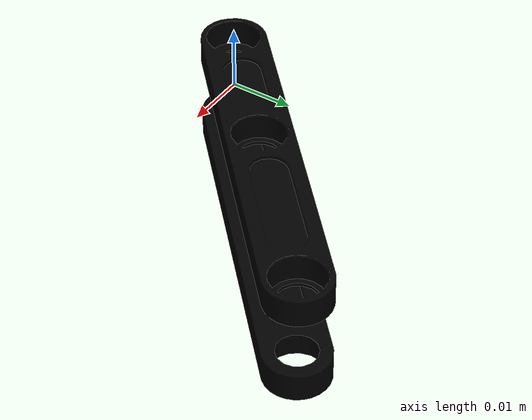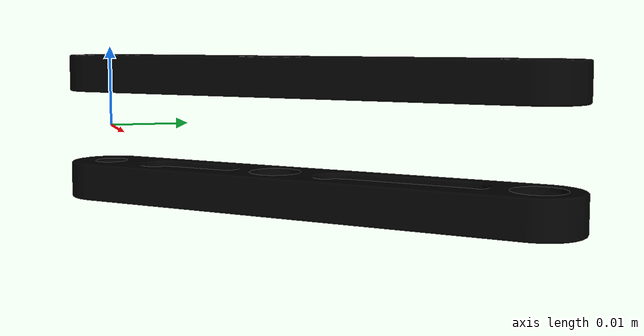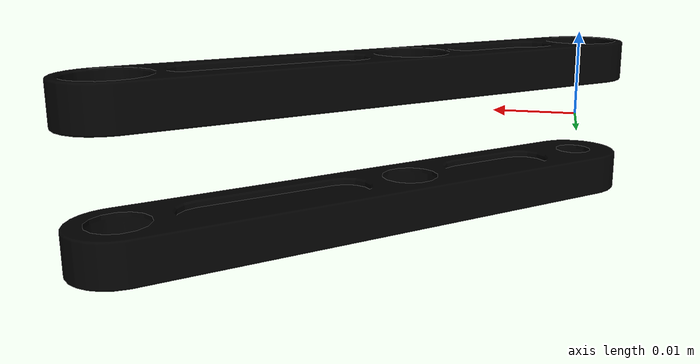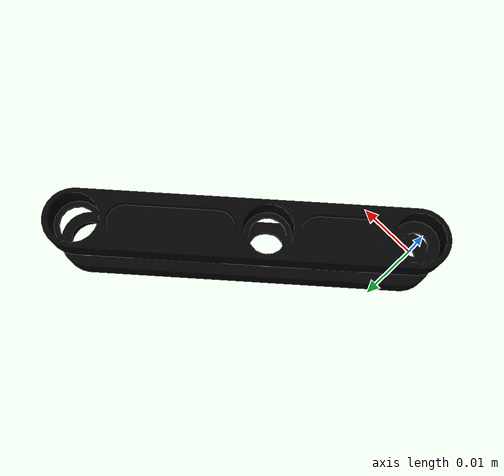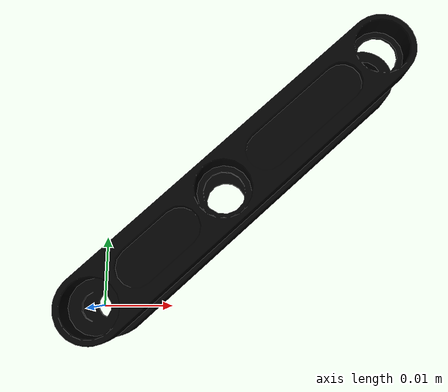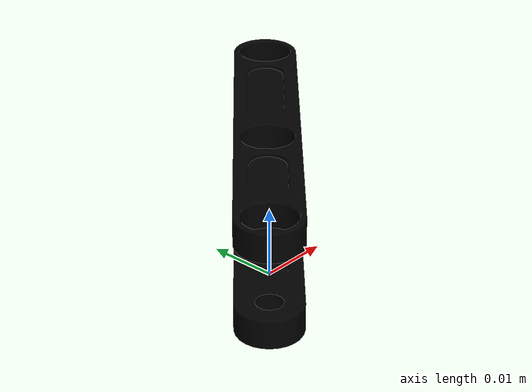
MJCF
<mujoco model="right_inner_link">
  <default>
    <default class="visual">
      <geom group="2" type="mesh" contype="0" conaffinity="0"/>
    </default>
    <default class="collision">
      <geom group="3" type="mesh"/>
    </default>
  </default>
  <asset>
    <material name="material_right_inner_link_0" specular="0.20000000000000004" shininess="1.0" rgba="0.00000000 0.00000000 0.00000000 1.0"/>
    <mesh file="right_inner_link.obj"/>
  </asset>
  <worldbody>
    <body name="right_inner_link">
      <geom material="material_right_inner_link_0" mesh="right_inner_link" class="visual"/>
      <geom mesh="right_inner_link" class="collision"/>
    </body>
  </worldbody>
</mujoco>
